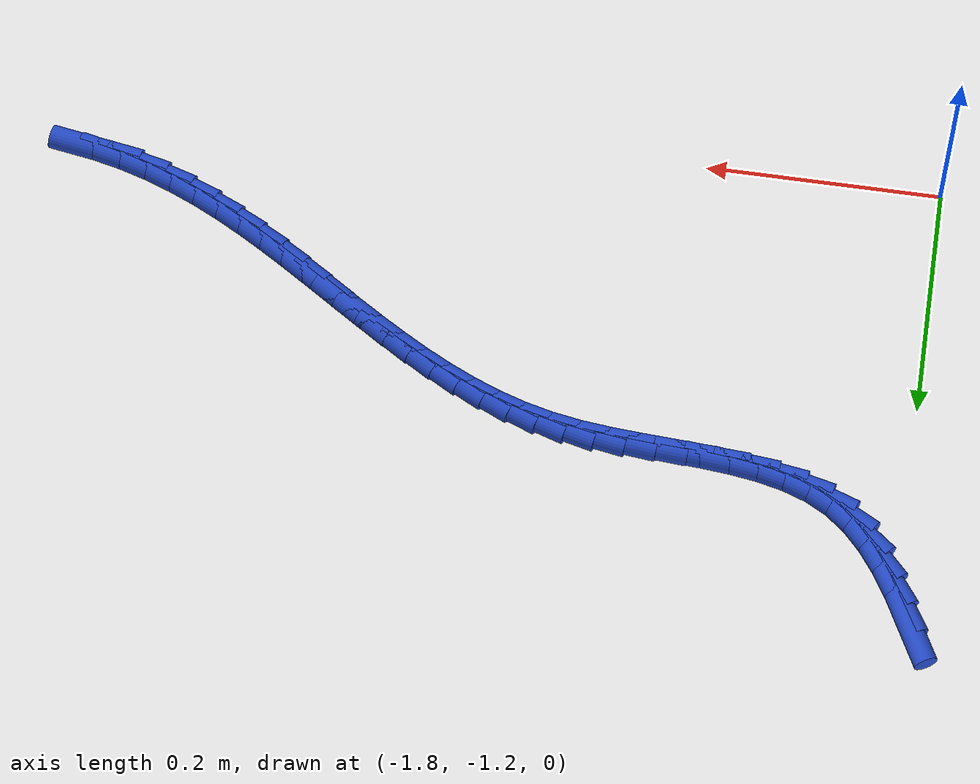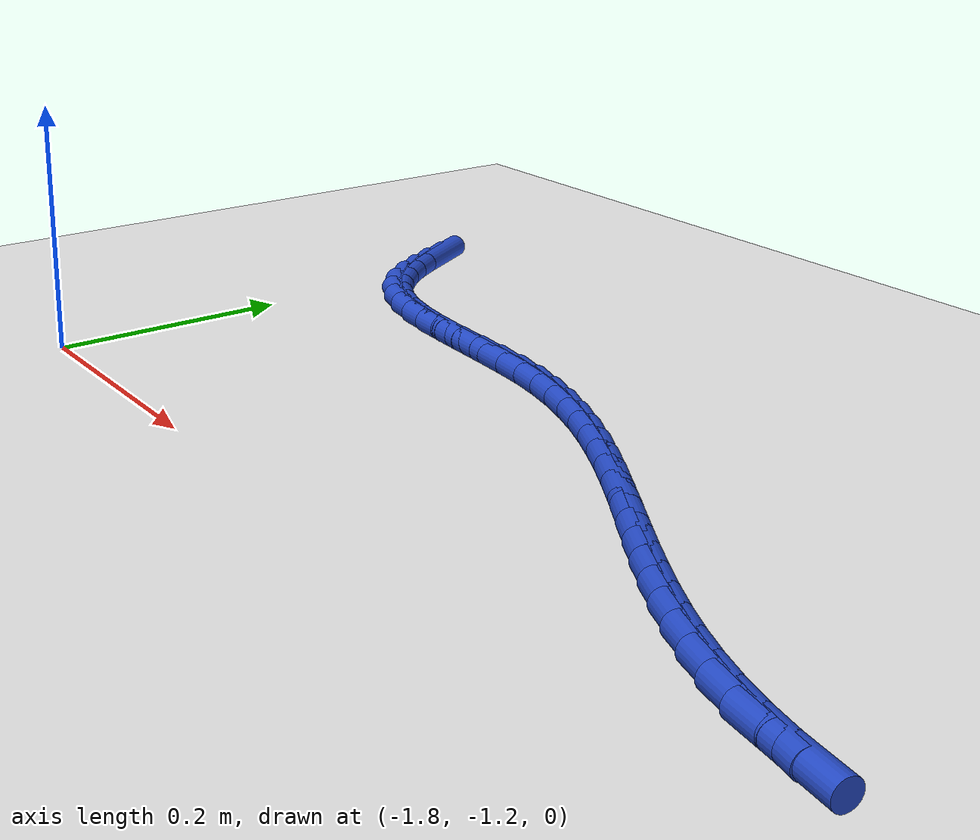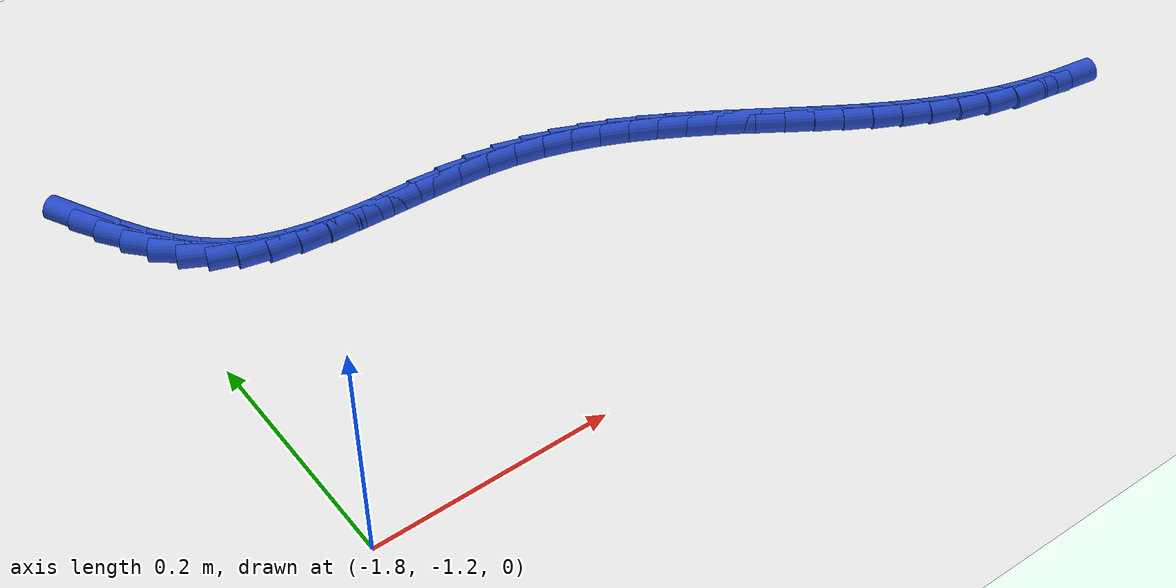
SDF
<sdf version="1.6">
 <world name="default">
  <model name="ground_plane">
   <static>1</static>
   <link name="link">
    <collision name="collision">
     <geometry><plane><normal>0 0 1</normal><size>100 100</size></plane></geometry>
     <surface><friction><ode><mu>100</mu><mu2>50</mu2></ode></friction></surface>
    </collision>
    <visual name="visual">
     <cast_shadows>0</cast_shadows>
     <geometry><plane><normal>0 0 1</normal><size>100 100</size></plane></geometry>
     <material>
      <script><uri>file://media/materials/scripts/gazebo.material</uri><name>Gazebo/WhiteGlow</name></script>
     </material>
    </visual>
   </link>
  </model>
  <model name="line">
   <link name="link_175">
    <pose>-1.8111852316647095 -0.8087169750390744 0.01 0 1.57 -1.0897864509932518</pose>
    <collision name="collision">
     <geometry><cylinder><radius>0.01</radius><length>0.08</length></cylinder></geometry>
    </collision>
    <visual name="visual">
     <material>
      <script><name>Gazebo/Blue</name><uri>file://media/materials/scripts/gazebo.material</uri></script>
     </material>
     <geometry><cylinder><radius>0.01</radius><length>0.08</length></cylinder></geometry>
    </visual>
   </link>
   <link name="link_176">
    <pose>-1.7995479656410214 -0.8310150687474835 0.01 0 1.57 -1.0275263284453915</pose>
    <collision name="collision">
     <geometry><cylinder><radius>0.01</radius><length>0.08</length></cylinder></geometry>
    </collision>
    <visual name="visual">
     <material>
      <script><name>Gazebo/Blue</name><uri>file://media/materials/scripts/gazebo.material</uri></script>
     </material>
     <geometry><cylinder><radius>0.01</radius><length>0.08</length></cylinder></geometry>
    </visual>
   </link>
   <link name="link_177">
    <pose>-1.786960883769508 -0.8518586344751571 0.01 0 1.57 -0.9391246550673792</pose>
    <collision name="collision">
     <geometry><cylinder><radius>0.01</radius><length>0.08</length></cylinder></geometry>
    </collision>
    <visual name="visual">
     <material>
      <script><name>Gazebo/Blue</name><uri>file://media/materials/scripts/gazebo.material</uri></script>
     </material>
     <geometry><cylinder><radius>0.01</radius><length>0.08</length></cylinder></geometry>
    </visual>
   </link>
   <link name="link_178">
    <pose>-1.773123000095254 -0.8707711613612774 0.01 0 1.57 -0.8203523497007488</pose>
    <collision name="collision">
     <geometry><cylinder><radius>0.01</radius><length>0.08</length></cylinder></geometry>
    </collision>
    <visual name="visual">
     <material>
      <script><name>Gazebo/Blue</name><uri>file://media/materials/scripts/gazebo.material</uri></script>
     </material>
     <geometry><cylinder><radius>0.01</radius><length>0.08</length></cylinder></geometry>
    </visual>
   </link>
   <link name="link_179">
    <pose>-1.757733328663345 -0.887276138545028 0.01 0 1.57 -0.6685916044149883</pose>
    <collision name="collision">
     <geometry><cylinder><radius>0.01</radius><length>0.08</length></cylinder></geometry>
    </collision>
    <visual name="visual">
     <material>
      <script><name>Gazebo/Blue</name><uri>file://media/materials/scripts/gazebo.material</uri></script>
     </material>
     <geometry><cylinder><radius>0.01</radius><length>0.08</length></cylinder></geometry>
    </visual>
   </link>
   <link name="link_180">
    <pose>-1.7404908835188664 -0.9008970551655909 0.01 0 1.57 -0.4950053151022309</pose>
    <collision name="collision">
     <geometry><cylinder><radius>0.01</radius><length>0.08</length></cylinder></geometry>
    </collision>
    <visual name="visual">
     <material>
      <script><name>Gazebo/Blue</name><uri>file://media/materials/scripts/gazebo.material</uri></script>
     </material>
     <geometry><cylinder><radius>0.01</radius><length>0.08</length></cylinder></geometry>
    </visual>
   </link>
   <link name="link_181">
    <pose>-1.7211902544874504 -0.9113162054774274 0.01 0 1.57 -0.3438208299274035</pose>
    <collision name="collision">
     <geometry><cylinder><radius>0.01</radius><length>0.08</length></cylinder></geometry>
    </collision>
    <visual name="visual">
     <material>
      <script><name>Gazebo/Blue</name><uri>file://media/materials/scripts/gazebo.material</uri></script>
     </material>
     <geometry><cylinder><radius>0.01</radius><length>0.08</length></cylinder></geometry>
    </visual>
   </link>
   <link name="link_182">
    <pose>-1.7000326515557682 -0.9188915084714832 0.01 0 1.57 -0.22802549999659205</pose>
    <collision name="collision">
     <geometry><cylinder><radius>0.01</radius><length>0.08</length></cylinder></geometry>
    </collision>
    <visual name="visual">
     <material>
      <script><name>Gazebo/Blue</name><uri>file://media/materials/scripts/gazebo.material</uri></script>
     </material>
     <geometry><cylinder><radius>0.01</radius><length>0.08</length></cylinder></geometry>
    </visual>
   </link>
   <link name="link_183">
    <pose>-1.677327400767096 -0.9241605247041138 0.01 0 1.57 -0.14516093233779642</pose>
    <collision name="collision">
     <geometry><cylinder><radius>0.01</radius><length>0.08</length></cylinder></geometry>
    </collision>
    <visual name="visual">
     <material>
      <script><name>Gazebo/Blue</name><uri>file://media/materials/scripts/gazebo.material</uri></script>
     </material>
     <geometry><cylinder><radius>0.01</radius><length>0.08</length></cylinder></geometry>
    </visual>
   </link>
   <link name="link_184">
    <pose>-1.6533838290474812 -0.9276608161984544 0.01 0 1.57 -0.09097834041024676</pose>
    <collision name="collision">
     <geometry><cylinder><radius>0.01</radius><length>0.08</length></cylinder></geometry>
    </collision>
    <visual name="visual">
     <material>
      <script><name>Gazebo/Blue</name><uri>file://media/materials/scripts/gazebo.material</uri></script>
     </material>
     <geometry><cylinder><radius>0.01</radius><length>0.08</length></cylinder></geometry>
    </visual>
   </link>
   <link name="link_185">
    <pose>-1.6285112633229715 -0.9299299449776399 0.01 0 1.57 -0.06172572782507616</pose>
    <collision name="collision">
     <geometry><cylinder><radius>0.01</radius><length>0.08</length></cylinder></geometry>
    </collision>
    <visual name="visual">
     <material>
      <script><name>Gazebo/Blue</name><uri>file://media/materials/scripts/gazebo.material</uri></script>
     </material>
     <geometry><cylinder><radius>0.01</radius><length>0.08</length></cylinder></geometry>
    </visual>
   </link>
   <link name="link_186">
    <pose>-1.603019030519616 -0.931505473064806 0.01 0 1.57 -0.054958084804549966</pose>
    <collision name="collision">
     <geometry><cylinder><radius>0.01</radius><length>0.08</length></cylinder></geometry>
    </collision>
    <visual name="visual">
     <material>
      <script><name>Gazebo/Blue</name><uri>file://media/materials/scripts/gazebo.material</uri></script>
     </material>
     <geometry><cylinder><radius>0.01</radius><length>0.08</length></cylinder></geometry>
    </visual>
   </link>
   <link name="link_187">
    <pose>-1.5772164575634617 -0.9329249624830873 0.01 0 1.57 -0.06968398352910411</pose>
    <collision name="collision">
     <geometry><cylinder><radius>0.01</radius><length>0.08</length></cylinder></geometry>
    </collision>
    <visual name="visual">
     <material>
      <script><name>Gazebo/Blue</name><uri>file://media/materials/scripts/gazebo.material</uri></script>
     </material>
     <geometry><cylinder><radius>0.01</radius><length>0.08</length></cylinder></geometry>
    </visual>
   </link>
   <link name="link_188">
    <pose>-1.5514128713805575 -0.9347259752556194 0.01 0 1.57 -0.10628822564491588</pose>
    <collision name="collision">
     <geometry><cylinder><radius>0.01</radius><length>0.08</length></cylinder></geometry>
    </collision>
    <visual name="visual">
     <material>
      <script><name>Gazebo/Blue</name><uri>file://media/materials/scripts/gazebo.material</uri></script>
     </material>
     <geometry><cylinder><radius>0.01</radius><length>0.08</length></cylinder></geometry>
    </visual>
   </link>
   <link name="link_189">
    <pose>-1.5259175988969516 -0.9374460734055374 0.01 0 1.57 -0.16627103905877474</pose>
    <collision name="collision">
     <geometry><cylinder><radius>0.01</radius><length>0.08</length></cylinder></geometry>
    </collision>
    <visual name="visual">
     <material>
      <script><name>Gazebo/Blue</name><uri>file://media/materials/scripts/gazebo.material</uri></script>
     </material>
     <geometry><cylinder><radius>0.01</radius><length>0.08</length></cylinder></geometry>
    </visual>
   </link>
   <link name="link_190">
    <pose>-1.5010390949548276 -0.9416211944191467 0.01 0 1.57 -0.24191803191517067</pose>
    <collision name="collision">
     <geometry><cylinder><radius>0.01</radius><length>0.08</length></cylinder></geometry>
    </collision>
    <visual name="visual">
     <material>
      <script><name>Gazebo/Blue</name><uri>file://media/materials/scripts/gazebo.material</uri></script>
     </material>
     <geometry><cylinder><radius>0.01</radius><length>0.08</length></cylinder></geometry>
    </visual>
   </link>
   <link name="link_191">
    <pose>-1.4769646542576342 -0.9475615760352294 0.01 0 1.57 -0.31343869512003447</pose>
    <collision name="collision">
     <geometry><cylinder><radius>0.01</radius><length>0.08</length></cylinder></geometry>
    </collision>
    <visual name="visual">
     <material>
      <script><name>Gazebo/Blue</name><uri>file://media/materials/scripts/gazebo.material</uri></script>
     </material>
     <geometry><cylinder><radius>0.01</radius><length>0.08</length></cylinder></geometry>
    </visual>
   </link>
   <link name="link_192">
    <pose>-1.453637342053959 -0.9551225000402772 0.01 0 1.57 -0.37728828557958</pose>
    <collision name="collision">
     <geometry><cylinder><radius>0.01</radius><length>0.08</length></cylinder></geometry>
    </collision>
    <visual name="visual">
     <material>
      <script><name>Gazebo/Blue</name><uri>file://media/materials/scripts/gazebo.material</uri></script>
     </material>
     <geometry><cylinder><radius>0.01</radius><length>0.08</length></cylinder></geometry>
    </visual>
   </link>
   <link name="link_193">
    <pose>-1.4309708770879557 -0.9641045809126174 0.01 0 1.57 -0.4326910128958325</pose>
    <collision name="collision">
     <geometry><cylinder><radius>0.01</radius><length>0.08</length></cylinder></geometry>
    </collision>
    <visual name="visual">
     <material>
      <script><name>Gazebo/Blue</name><uri>file://media/materials/scripts/gazebo.material</uri></script>
     </material>
     <geometry><cylinder><radius>0.01</radius><length>0.08</length></cylinder></geometry>
    </visual>
   </link>
   <link name="link_194">
    <pose>-1.4088789781037783 -0.9743084331305781 0.01 0 1.57 -0.47924082909755955</pose>
    <collision name="collision">
     <geometry><cylinder><radius>0.01</radius><length>0.08</length></cylinder></geometry>
    </collision>
    <visual name="visual">
     <material>
      <script><name>Gazebo/Blue</name><uri>file://media/materials/scripts/gazebo.material</uri></script>
     </material>
     <geometry><cylinder><radius>0.01</radius><length>0.08</length></cylinder></geometry>
    </visual>
   </link>
   <link name="link_195">
    <pose>-1.3872753638455801 -0.9855346711724864 0.01 0 1.57 -0.5167974135005867</pose>
    <collision name="collision">
     <geometry><cylinder><radius>0.01</radius><length>0.08</length></cylinder></geometry>
    </collision>
    <visual name="visual">
     <material>
      <script><name>Gazebo/Blue</name><uri>file://media/materials/scripts/gazebo.material</uri></script>
     </material>
     <geometry><cylinder><radius>0.01</radius><length>0.08</length></cylinder></geometry>
    </visual>
   </link>
   <link name="link_196">
    <pose>-1.366073753057515 -0.9975839095166708 0.01 0 1.57 -0.5453798654292167</pose>
    <collision name="collision">
     <geometry><cylinder><radius>0.01</radius><length>0.08</length></cylinder></geometry>
    </collision>
    <visual name="visual">
     <material>
      <script><name>Gazebo/Blue</name><uri>file://media/materials/scripts/gazebo.material</uri></script>
     </material>
     <geometry><cylinder><radius>0.01</radius><length>0.08</length></cylinder></geometry>
    </visual>
   </link>
   <link name="link_197">
    <pose>-1.345187864483737 -1.0102567626414583 0.01 0 1.57 -0.5650759538712135</pose>
    <collision name="collision">
     <geometry><cylinder><radius>0.01</radius><length>0.08</length></cylinder></geometry>
    </collision>
    <visual name="visual">
     <material>
      <script><name>Gazebo/Blue</name><uri>file://media/materials/scripts/gazebo.material</uri></script>
     </material>
     <geometry><cylinder><radius>0.01</radius><length>0.08</length></cylinder></geometry>
    </visual>
   </link>
   <link name="link_198">
    <pose>-1.3245314168683997 -1.0233538450251771 0.01 0 1.57 -0.5759737806850107</pose>
    <collision name="collision">
     <geometry><cylinder><radius>0.01</radius><length>0.08</length></cylinder></geometry>
    </collision>
    <visual name="visual">
     <material>
      <script><name>Gazebo/Blue</name><uri>file://media/materials/scripts/gazebo.material</uri></script>
     </material>
     <geometry><cylinder><radius>0.01</radius><length>0.08</length></cylinder></geometry>
    </visual>
   </link>
   <link name="link_199">
    <pose>-1.3040181289556558 -1.0366757711461547 0.01 0 1.57 -0.5781161847566385</pose>
    <collision name="collision">
     <geometry><cylinder><radius>0.01</radius><length>0.08</length></cylinder></geometry>
    </collision>
    <visual name="visual">
     <material>
      <script><name>Gazebo/Blue</name><uri>file://media/materials/scripts/gazebo.material</uri></script>
     </material>
     <geometry><cylinder><radius>0.01</radius><length>0.08</length></cylinder></geometry>
    </visual>
   </link>
   <link name="link_200">
    <pose>-1.2835617194896607 -1.0500231554827184 0.01 0 1.57 -0.5714758447602118</pose>
    <collision name="collision">
     <geometry><cylinder><radius>0.01</radius><length>0.08</length></cylinder></geometry>
    </collision>
    <visual name="visual">
     <material>
      <script><name>Gazebo/Blue</name><uri>file://media/materials/scripts/gazebo.material</uri></script>
     </material>
     <geometry><cylinder><radius>0.01</radius><length>0.08</length></cylinder></geometry>
    </visual>
   </link>
   <link name="link_201">
    <pose>-1.2630759072145674 -1.0631966125131964 0.01 0 1.57 -0.5559495075832672</pose>
    <collision name="collision">
     <geometry><cylinder><radius>0.01</radius><length>0.08</length></cylinder></geometry>
    </collision>
    <visual name="visual">
     <material>
      <script><name>Gazebo/Blue</name><uri>file://media/materials/scripts/gazebo.material</uri></script>
     </material>
     <geometry><cylinder><radius>0.01</radius><length>0.08</length></cylinder></geometry>
    </visual>
   </link>
   <link name="link_202">
    <pose>-1.242474407701787 -1.0759967608103362 0.01 0 1.57 -0.5315874340599356</pose>
    <collision name="collision">
     <geometry><cylinder><radius>0.01</radius><length>0.08</length></cylinder></geometry>
    </collision>
    <visual name="visual">
     <material>
      <script><name>Gazebo/Blue</name><uri>file://media/materials/scripts/gazebo.material</uri></script>
     </material>
     <geometry><cylinder><radius>0.01</radius><length>0.08</length></cylinder></geometry>
    </visual>
   </link>
   <link name="link_203">
    <pose>-1.2216623206868211 -1.0882353376700884 0.01 0 1.57 -0.49899905359623414</pose>
    <collision name="collision">
     <geometry><cylinder><radius>0.01</radius><length>0.08</length></cylinder></geometry>
    </collision>
    <visual name="visual">
     <material>
      <script><name>Gazebo/Blue</name><uri>file://media/materials/scripts/gazebo.material</uri></script>
     </material>
     <geometry><cylinder><radius>0.01</radius><length>0.08</length></cylinder></geometry>
    </visual>
   </link>
   <link name="link_204">
    <pose>-1.200517368167657 -1.099759411317247 0.01 0 1.57 -0.4584830613850887</pose>
    <collision name="collision">
     <geometry><cylinder><radius>0.01</radius><length>0.08</length></cylinder></geometry>
    </collision>
    <visual name="visual">
     <material>
      <script><name>Gazebo/Blue</name><uri>file://media/materials/scripts/gazebo.material</uri></script>
     </material>
     <geometry><cylinder><radius>0.01</radius><length>0.08</length></cylinder></geometry>
    </visual>
   </link>
   <link name="link_205">
    <pose>-1.1789118465380597 -1.110423051710642 0.01 0 1.57 -0.4104229268957308</pose>
    <collision name="collision">
     <geometry><cylinder><radius>0.01</radius><length>0.08</length></cylinder></geometry>
    </collision>
    <visual name="visual">
     <material>
      <script><name>Gazebo/Blue</name><uri>file://media/materials/scripts/gazebo.material</uri></script>
     </material>
     <geometry><cylinder><radius>0.01</radius><length>0.08</length></cylinder></geometry>
    </visual>
   </link>
   <link name="link_206">
    <pose>-1.1567180521917946 -1.1200803288091026 0.01 0 1.57 -0.35546864856607163</pose>
    <collision name="collision">
     <geometry><cylinder><radius>0.01</radius><length>0.08</length></cylinder></geometry>
    </collision>
    <visual name="visual">
     <material>
      <script><name>Gazebo/Blue</name><uri>file://media/materials/scripts/gazebo.material</uri></script>
     </material>
     <geometry><cylinder><radius>0.01</radius><length>0.08</length></cylinder></geometry>
    </visual>
   </link>
   <link name="link_207">
    <pose>-1.133808281522628 -1.12858531257146 0.01 0 1.57 -0.2945717261137913</pose>
    <collision name="collision">
     <geometry><cylinder><radius>0.01</radius><length>0.08</length></cylinder></geometry>
    </collision>
    <visual name="visual">
     <material>
      <script><name>Gazebo/Blue</name><uri>file://media/materials/scripts/gazebo.material</uri></script>
     </material>
     <geometry><cylinder><radius>0.01</radius><length>0.08</length></cylinder></geometry>
    </visual>
   </link>
   <link name="link_208">
    <pose>-1.1100548309243239 -1.135792072956544 0.01 0 1.57 -0.22902515458939823</pose>
    <collision name="collision">
     <geometry><cylinder><radius>0.01</radius><length>0.08</length></cylinder></geometry>
    </collision>
    <visual name="visual">
     <material>
      <script><name>Gazebo/Blue</name><uri>file://media/materials/scripts/gazebo.material</uri></script>
     </material>
     <geometry><cylinder><radius>0.01</radius><length>0.08</length></cylinder></geometry>
    </visual>
   </link>
   <link name="link_209">
    <pose>-1.085332622614785 -1.141555198141563 0.01 0 1.57 -0.16240531671269906</pose>
    <collision name="collision">
     <geometry><cylinder><radius>0.01</radius><length>0.08</length></cylinder></geometry>
    </collision>
    <visual name="visual">
     <material>
      <script><name>Gazebo/Blue</name><uri>file://media/materials/scripts/gazebo.material</uri></script>
     </material>
     <geometry><cylinder><radius>0.01</radius><length>0.08</length></cylinder></geometry>
    </visual>
   </link>
  </model>
 </world>
</sdf>
